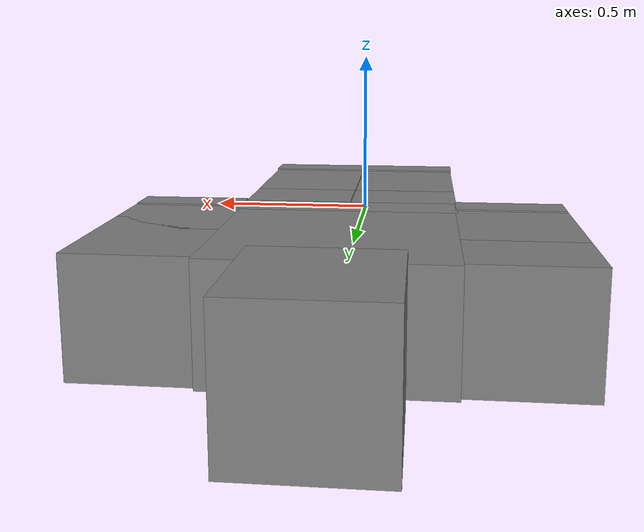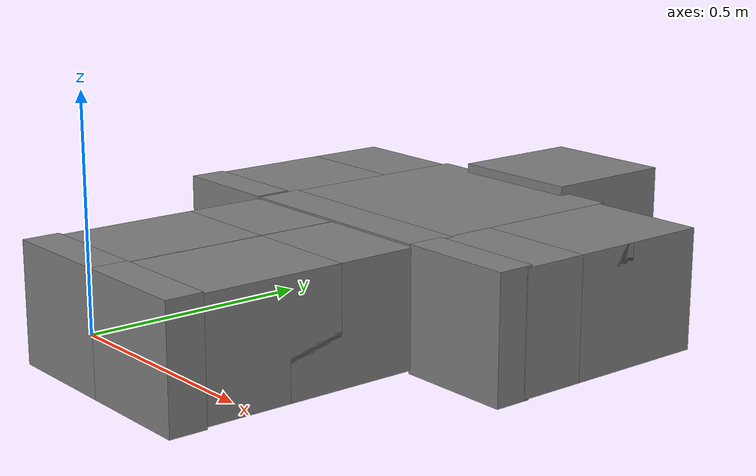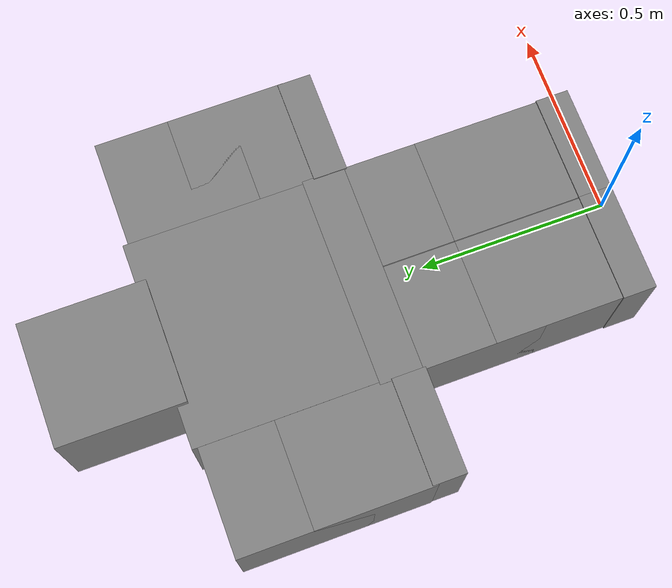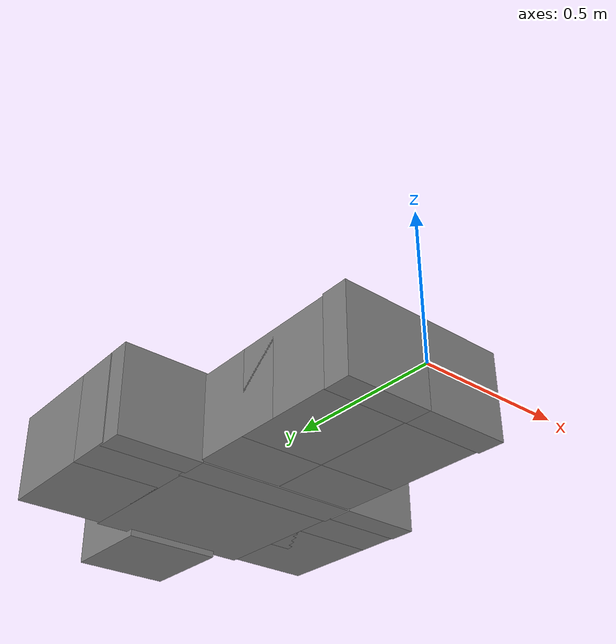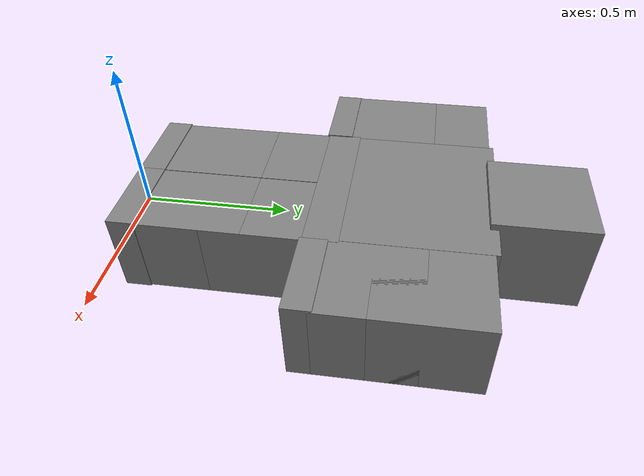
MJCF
<mujoco model="r15">

  <statistic extent="2" center="0 0 1"/>

  <option timestep="0.00555"/>

  <default>
    <motor ctrlrange="-1 1" ctrllimited="true"/>
    <default class="body">
      <geom type="capsule" condim="1" friction="1.0 0.05 0.05" solimp=".9 .99 .003" solref=".015 1"/>
      <joint type="hinge" damping="0.1" stiffness="5" armature=".007" limited="true" solimplimit="0 .99 .01"/>
      <site size=".04" group="3"/>
      <default class="force-torque">
        <site type="box" size=".01 .01 .02" rgba="1 0 0 1" />
      </default>
      <default class="touch">
        <site type="capsule" rgba="0 0 1 .3"/>
      </default>
    </default>
  </default>

  <worldbody>
    <light diffuse="1 1 1" pos="0 0 10" dir="0 0 -1"/>
<body name="LowerTorso" pos="0 0.669872007369995 0">
  <inertial pos="0 0 0" mass="12.3093695831299" diaginertia="0.0939753290435791 0.399994085021972 0.331837694203186"/>
  <freejoint name="root"/>
  <geom name="LowerTorso" type="box" size="0.278797702789306 0.0560914748907089 0.140559992790223"/>
  <body name="RightUpperLeg" pos="0.14 -0.187982840538024 1.28173828125e-05">
    <inertial pos="0 0 0" mass="20.2258494644165" diaginertia="0.370491357885743 0.255283778773499 0.375722849510193"/>
    <joint name="RightHip_x" pos="0 0.131990195512772 -1.81762027204968e-05" type="hinge" axis="1 0 0"/>
    <joint name="RightHip_y" pos="0 0.131990195512772 -1.81762027204968e-05" type="hinge" axis="0 1 0"/>
    <joint name="RightHip_z" pos="0 0.131990195512772 -1.81762027204968e-05" type="hinge" axis="0 0 1"/>
    <geom name="RightUpperLeg" type="box" size="0.138998091220856 0.190810475349427 0.136178233623505"/>
    <body name="RightLowerLeg" pos="0 -0.241509082317353 -1.28841400146484e-05">
      <inertial pos="0 0 0" mass="19.3037530326843" diaginertia="0.332707459530639 0.243669545773315 0.337676290489196"/>
      <joint name="RightKnee_x" pos="0 0.11574049949646 6.96039380272849e-06" type="hinge" axis="1 0 0"/>
      <geom name="RightLowerLeg" type="box" size="0.138998091220856 0.182093019485474 0.136192002296448"/>
      <body name="RightFoot" pos="0 -0.196700855493545 -6.67572021484376e-07">
        <inertial pos="0 0 0" mass="4.8419257736206" diaginertia="0.0347806883102417 0.0638992851219178 0.0352770976064683"/>
        <joint name="RightAnkle_x" pos="0 0.0296842887997628 2.14282164233737e-05" type="hinge" axis="1 0 0"/>
        <joint name="RightAnkle_y" pos="0 0.0296842887997628 2.14282164233737e-05" type="hinge" axis="0 1 0"/>
        <joint name="RightAnkle_z" pos="0 0.0296842887997628 2.14282164233737e-05" type="hinge" axis="0 0 1"/>
        <geom name="RightFoot" type="box" size="0.141242368221283 0.0436791372299194 0.140149335861206"/>
      </body>
    </body>
  </body>
  <body name="LeftUpperLeg" pos="-0.14 -0.187982773780822 6.67572021484374e-08">
    <inertial pos="0 0 0" mass="20.2258494644165" diaginertia="0.370491357885743 0.255283778773499 0.375722849510193"/>
    <joint name="LeftHip_x" pos="1.65698637033529e-08 0.131990162134171 -4.46472165549494e-08" type="hinge" axis="1 0 0"/>
    <joint name="LeftHip_y" pos="1.65698637033529e-08 0.131990162134171 -4.46472165549494e-08" type="hinge" axis="0 1 0"/>
    <joint name="LeftHip_z" pos="1.65698637033529e-08 0.131990162134171 -4.46472165549494e-08" type="hinge" axis="0 0 1"/>
    <geom name="LeftUpperLeg" type="box" size="0.138998091220856 0.190810475349427 0.136178233623505"/>
    <body name="LeftLowerLeg" pos="0 -0.241510434150697 -6.67572021484374e-08">
      <inertial pos="0 0 0" mass="19.3037530326843" diaginertia="0.332707459530639 0.243669545773315 0.337676290489196"/>
      <joint name="LeftKnee_x" pos="8.28493185167645e-09 0.115692926645279 -4.38158519955324e-08" type="hinge" axis="1 0 0"/>
      <geom name="LeftLowerLeg" type="box" size="0.138998091220856 0.182093019485474 0.136192002296448"/>
      <body name="LeftFoot" pos="0 -0.196700884699821 -1.33514404296875e-07">
        <inertial pos="0 0 0" mass="4.8419257736206" diaginertia="0.0347806883102417 0.0638992851219178 0.0352770976064683"/>
        <joint name="LeftAnkle_x" pos="-5.05122090999067e-08 0.0296843221783637 -4.82752138850629e-07" type="hinge" axis="1 0 0"/>
        <joint name="LeftAnkle_y" pos="-5.05122090999067e-08 0.0296843221783637 -4.82752138850629e-07" type="hinge" axis="0 1 0"/>
        <joint name="LeftAnkle_z" pos="-5.05122090999067e-08 0.0296843221783637 -4.82752138850629e-07" type="hinge" axis="0 0 1"/>
        <geom name="LeftFoot" type="box" size="0.141242368221283 0.0436791372299194 0.140149335861206"/>
      </body>
    </body>
  </body>
  <body name="UpperTorso" pos="0 0.293727684020996 -6.67572021484374e-08">
    <inertial pos="0 0 0" mass="50.9062170867921" diaginertia="1.29420598590698 1.59112148022461 2.21482100264893"/>
    <joint name="Waist_x" pos="-1.62153889959882e-08 -0.237720127105713 3.35121137595706e-08" type="hinge" axis="1 0 0"/>
    <joint name="Waist_y" pos="-1.62153889959882e-08 -0.237720127105713 3.35121137595706e-08" type="hinge" axis="0 1 0"/>
    <joint name="Waist_z" pos="-1.62153889959882e-08 -0.237720127105713 3.35121137595706e-08" type="hinge" axis="0 0 1"/>
    <geom name="UpperTorso" type="box" size="0.272049083709717 0.237724432945251 0.140559992790223"/>
    <body name="LeftUpperArm" pos="-0.412199554443359 0.0500051498413096 -6.67572021484377e-08">
      <inertial pos="0 0 0" mass="19.1349013175964" diaginertia="0.318200317552185 0.25076338409729 0.318000026612853"/>
      <joint name="LeftShoulder_x" pos="0.140149435997009 0.117298529148102 2.50806806434412e-08" type="hinge" axis="1 0 0"/>
      <joint name="LeftShoulder_y" pos="0.140149435997009 0.117298529148102 2.50806806434412e-08" type="hinge" axis="0 1 0"/>
      <joint name="LeftShoulder_z" pos="0.140149435997009 0.117298529148102 2.50806806434412e-08" type="hinge" axis="0 0 1"/>
      <geom name="LeftUpperArm" type="box" size="0.140149335861206 0.173823771476746 0.140261337757111"/>
      <body name="LeftLowerArm" pos="0 -0.176321258544922 6.67572021484377e-08">
        <inertial pos="0 0 0" mass="17.2225517539978" diaginertia="0.253460797834778 0.225701986724853 0.253280510343933"/>
        <joint name="LeftElbow_x" pos="0.000134158034343273 0.0769507765769957 2.14449078610665e-20" type="hinge" axis="1 0 0"/>
        <geom name="LeftLowerArm" type="box" size="0.140149335861206 0.156451745033265 0.140261337757111"/>
        <body name="LeftHand" pos="2.13623046837697e-06 -0.185849714279174 0">
          <inertial pos="0 0 0" mass="4.91083613586426" diaginertia="0.0371226305099488 0.0650060849025726 0.0342815317455293"/>
          <geom name="LeftHand" type="box" size="0.137797329425812 0.0442071783542633 0.143957333564758"/>
        </body>
      </body>
    </body>
    <body name="RightUpperArm" pos="0.412199554443359 0.0500051498413096 0">
      <inertial pos="0 0 0" mass="19.1349013175964" diaginertia="0.318200317552185 0.25076338409729 0.318000026612853"/>
      <joint name="RightShoulder_x" pos="-0.140149536132813 0.117298529148102 2.50806806434412e-08" type="hinge" axis="1 0 0"/>
      <joint name="RightShoulder_y" pos="-0.140149536132813 0.117298529148102 2.50806806434412e-08" type="hinge" axis="0 1 0"/>
      <joint name="RightShoulder_z" pos="-0.140149536132813 0.117298529148102 2.50806806434412e-08" type="hinge" axis="0 0 1"/>
      <geom name="RightUpperArm" type="box" size="0.140149335861206 0.173823771476746 0.140261337757111"/>
      <body name="RightLowerArm" pos="0 -0.176321258544922 0">
        <inertial pos="0 0 0" mass="17.2225517539978" diaginertia="0.253460797834778 0.225701986724853 0.253280510343933"/>
        <joint name="RightElbow_x" pos="3.34142055180564e-08 0.0769184410572052 2.14449078610665e-20" type="hinge" axis="1 0 0"/>
        <geom name="RightLowerArm" type="box" size="0.140149335861206 0.156451745033265 0.140261337757111"/>
        <body name="RightHand" pos="0 -0.185849714279174 0">
          <inertial pos="0 0 0" mass="4.91083613586426" diaginertia="0.0371226305099488 0.0650060849025726 0.0342815317455293"/>
          <geom name="RightHand" type="box" size="0.137797329425812 0.0442071783542633 0.143957333564758"/>
        </body>
      </body>
    </body>
    <body name="Head" pos="0 0.375294370651245 7.39002227783203e-05">
      <inertial pos="0 0 0" mass="24.4547679367065" diaginertia="0.438244884381104 0.430421535678101 0.438222931878662"/>
      <joint name="Neck_x" pos="0 -0.137564029693604 -7.38566741347313e-05" type="hinge" axis="1 0 0"/>
      <joint name="Neck_y" pos="0 -0.137564029693604 -7.38566741347313e-05" type="hinge" axis="0 1 0"/>
      <joint name="Neck_z" pos="0 -0.137564029693604 -7.38566741347313e-05" type="hinge" axis="0 0 1"/>
      <geom name="Head" type="box" size="0.16247995376587 0.165406973361969 0.162488231658935"/>
    </body>
  </body>
</body>
  </worldbody>
</mujoco>
